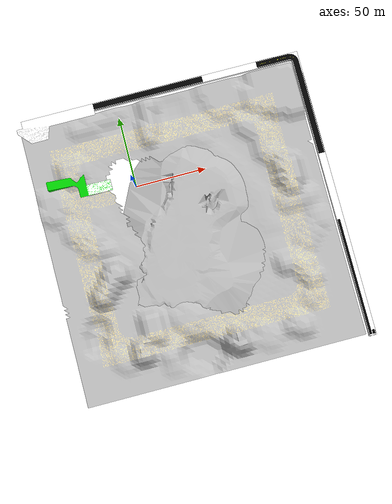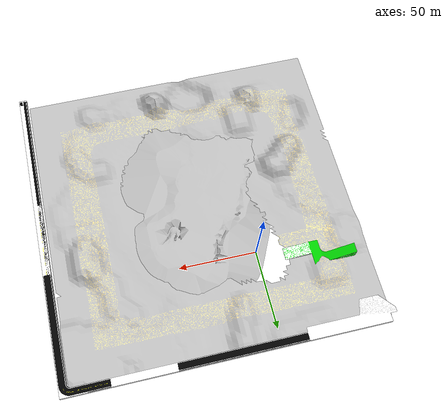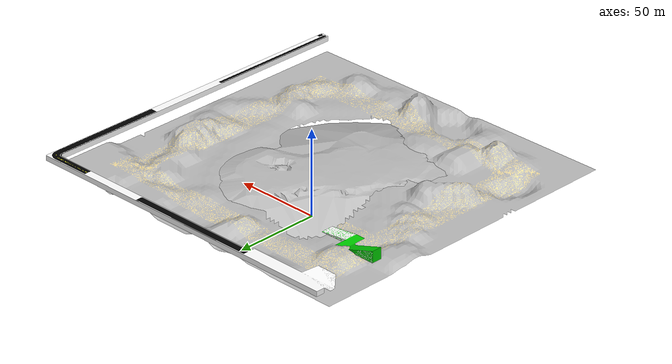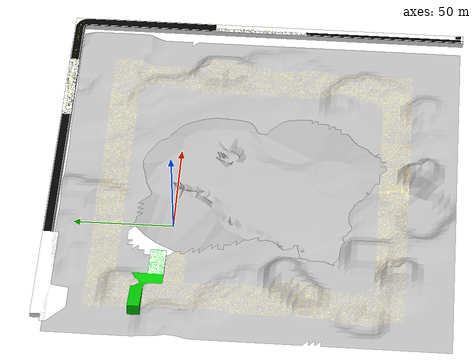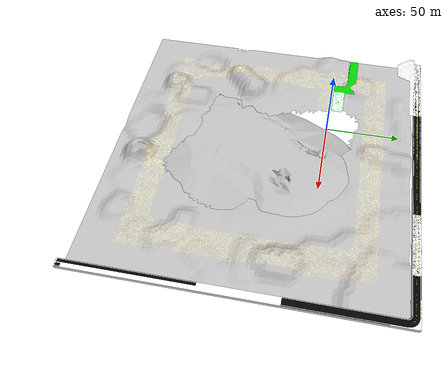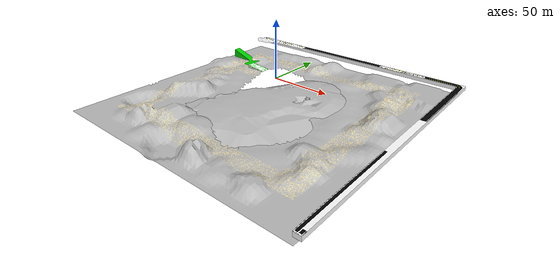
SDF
<sdf version="1.6">
 <world name="default">
  <scene><sky><clouds><speed>12</speed></clouds></sky></scene>
  <include><uri>model://sun</uri></include>
  <include><pose>30 -40 0 0 0 0</pose><uri>model://bamboo_with_wall</uri></include>
  <include><pose>30 -42 0 0 0 0</pose><uri>model://road_to_water</uri></include>
  <include><pose>30 -40 0 0 0 0</pose><uri>model://nctu_road</uri></include>
  <include><pose>30 -40 -0.01 0 0 0</pose><uri>model://sanbox_terrain_road</uri></include>
 </world>
</sdf>

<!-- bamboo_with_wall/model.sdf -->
<sdf version="1.4">
  <model name="bamboo_with_wall">
    <static>1</static>
    <link name="link">
      <collision name="collision">
        <geometry>
          <mesh>
            <uri>model://bamboo_with_wall/meshes/bamboo.dae</uri>
          </mesh>
        </geometry>
      </collision>
      <visual name="visual">
        <cast_shadows>false</cast_shadows>
        <geometry>
          <mesh>
            <uri>model://bamboo_with_wall/meshes/bamboo.dae</uri>
          </mesh>
        </geometry>
      </visual>
      <inertial>
       <mass>300</mass>
       <inertia>
          <ixx>150</ixx>
          <ixy>0</ixy>
          <ixz>0</ixz>
          <iyy>150</iyy>
          <iyz>0</iyz>
          <izz>150</izz>
       </inertia>
      </inertial>
    </link>
  </model>
</sdf>

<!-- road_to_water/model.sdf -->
<sdf version="1.4">
  <model name="road_to_water">
    <static>true</static>
    <link name="walls">
      <collision name="collision">
        <geometry>
          <mesh>
            <uri>model://road_to_water/meshes/con.dae</uri>
          </mesh>
        </geometry>
      </collision>
      <visual name="visual">
        <geometry>
          <mesh>
            <uri>model://road_to_water/meshes/con.dae</uri>
          </mesh>
        </geometry>
        <cast_shadows>false</cast_shadows>
      </visual>
    </link>
  </model>
</sdf>

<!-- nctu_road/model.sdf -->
<sdf version="1.4">
  <model name="nctu_road">
    <static>true</static>
    <link name="walls">
      <collision name="collision">
        <geometry>
          <mesh>
            <uri>model://nctu_road/meshes/con.dae</uri>
          </mesh>
        </geometry>
      </collision>
      <visual name="visual">
        <geometry>
          <mesh>
            <uri>model://nctu_road/meshes/con.dae</uri>
          </mesh>
        </geometry>
        <cast_shadows>false</cast_shadows>
      </visual>
    </link>
  </model>
</sdf>

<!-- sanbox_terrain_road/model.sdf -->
<sdf version="1.4">
  <model name="sanbox_terrain_road">
    <static>1</static>
    <link name="link">
      <collision name="collision">
        <geometry>
          <mesh>
            <uri>model://sanbox_terrain_road/meshes/terrain.dae</uri>
          </mesh>
        </geometry>
      </collision>
      <visual name="visual">
        <cast_shadows>false</cast_shadows>
        <geometry>
          <mesh>
            <uri>model://sanbox_terrain_road/meshes/terrain.dae</uri>
          </mesh>
        </geometry>
      </visual>
      <inertial>
       <mass>300</mass>
       <inertia>
          <ixx>150</ixx>
          <ixy>0</ixy>
          <ixz>0</ixz>
          <iyy>150</iyy>
          <iyz>0</iyz>
          <izz>150</izz>
       </inertia>
      </inertial>
    </link>
  </model>
</sdf>
